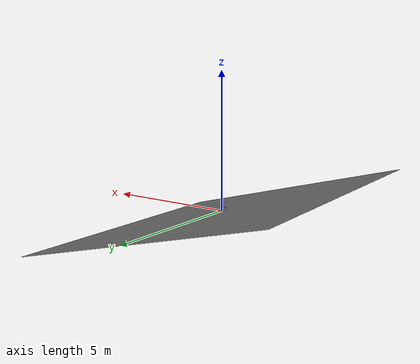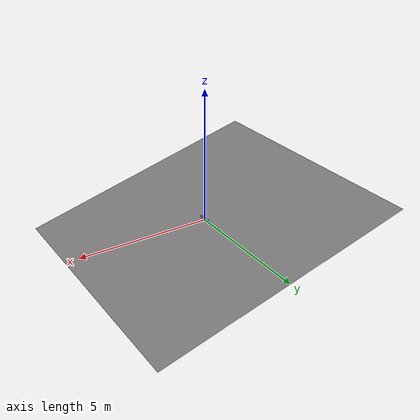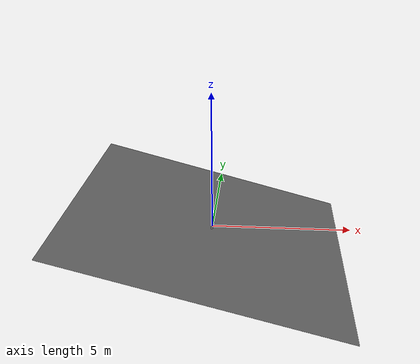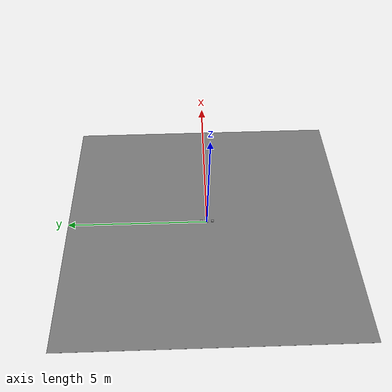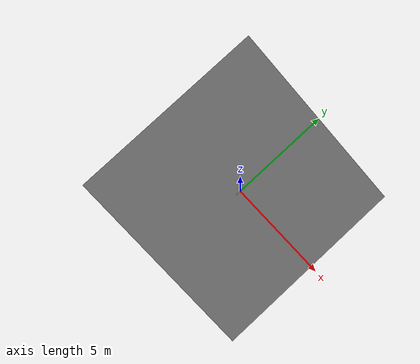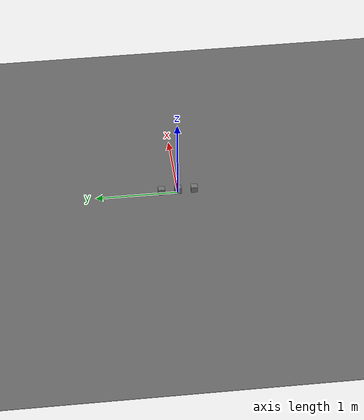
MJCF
<mujoco model="friction-test">
          <compiler angle="radian"/>
          <option gravity="0 0 -9.81" timestep="0.001" solver="Newton"
                  iterations="50" tolerance="1e-10"/>

          <worldbody>
            <body name="ramp" euler="0 0.2618 0">
              <geom name="floor" type="plane" size="5 5 0.01"
                    friction="0 0 0"/>
            </body>

            <!-- All at x=0, spaced along Y (horizontal on ramp). Just above plane. -->
            <body name="low" pos="0 -0.2 0.045">
              <freejoint/>
              <geom name="g_low" type="box" size="0.04 0.04 0.04" mass="0.5"
                    friction="0.1 0.005 0.001"/>
            </body>

            <body name="med" pos="0 0 0.045">
              <freejoint/>
              <geom name="g_med" type="box" size="0.04 0.04 0.04" mass="0.5"
                    friction="0.5 0.005 0.001"/>
            </body>

            <body name="high" pos="0 0.2 0.045">
              <freejoint/>
              <geom name="g_high" type="box" size="0.04 0.04 0.04" mass="0.5"
                    friction="1.0 0.005 0.001"/>
            </body>
          </worldbody>
        </mujoco>
